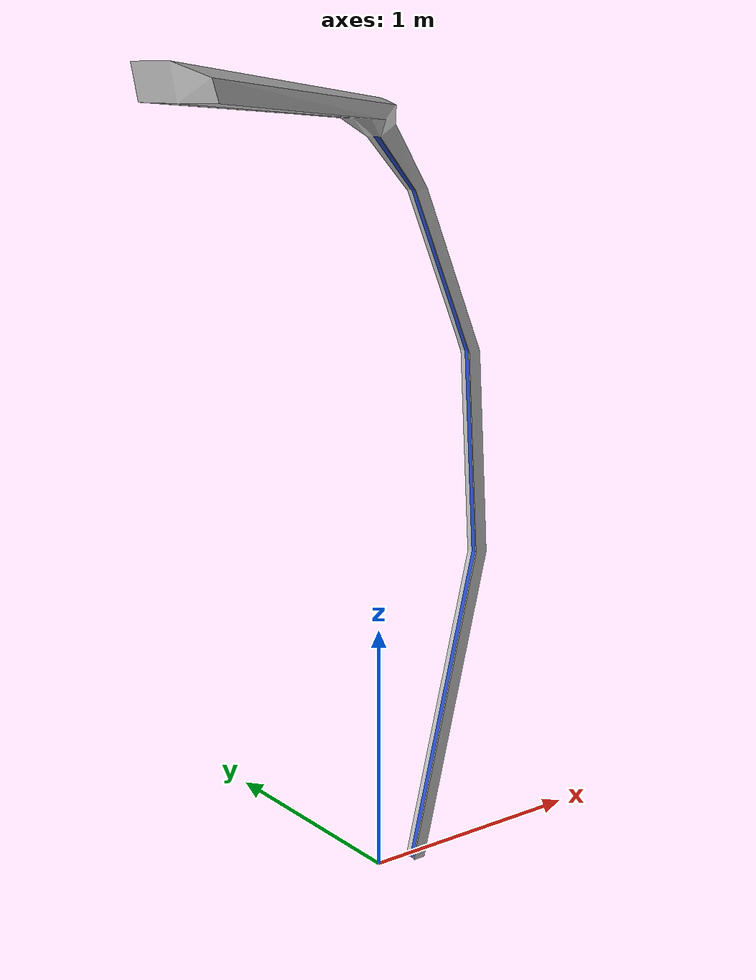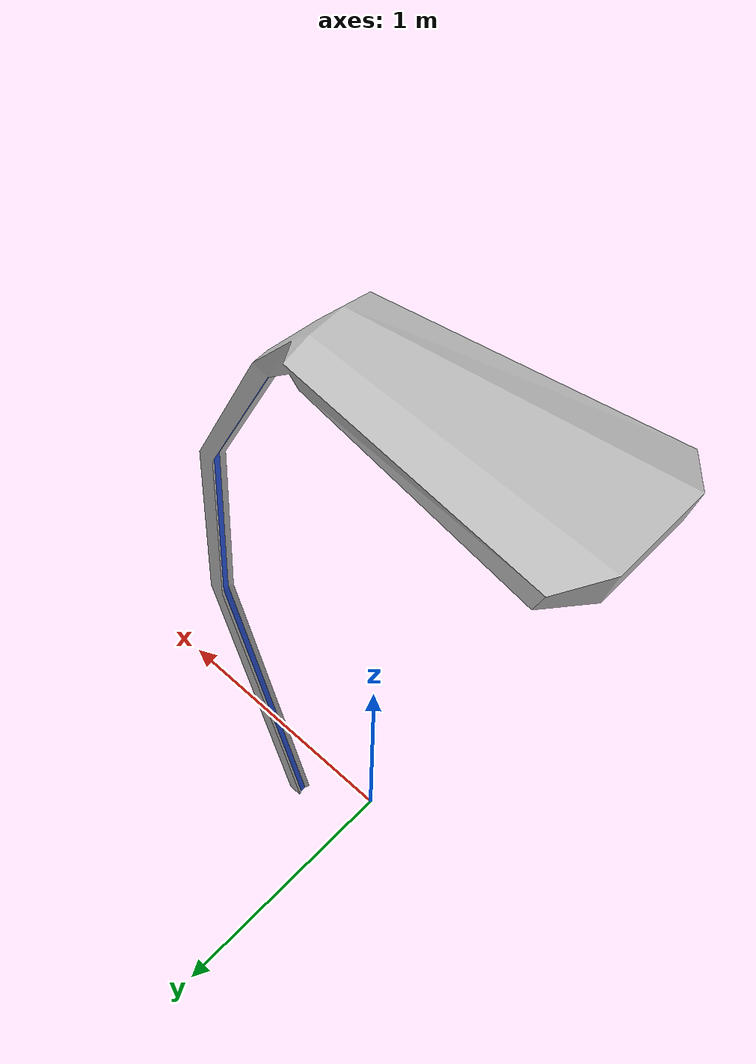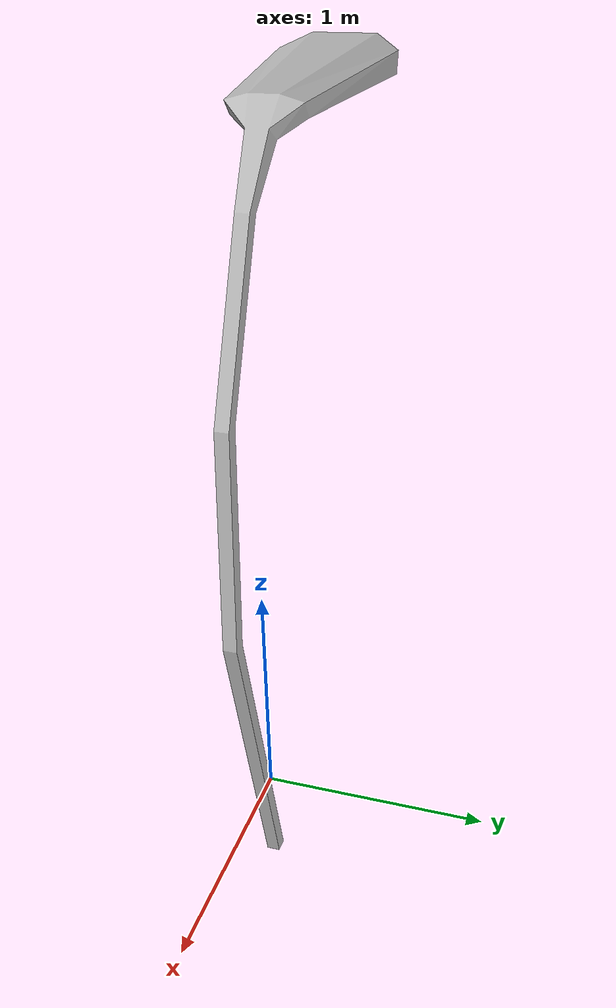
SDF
<?xml version="1.0" ?>
<sdf version="1.5">
  <model name='future_lamp'>
    <pose>0 0 0 0 0 0</pose>
    <static>1</static>
    <link name='body'>
      <collision name="lamp">
        <geometry>
          <mesh>
            <uri>model://future_lamp/meshes/future_lamp-coll.dae</uri>
          </mesh>
        </geometry>
      </collision>
      <visual name='lamp'>
        <cast_shadows>1</cast_shadows>
        <geometry>
          <mesh>
            <uri>model://future_lamp/meshes/future_lamp.dae</uri>
          </mesh>
        </geometry>
      </visual>
      <velocity_decay>
        <linear>0</linear>
        <angular>0</angular>
      </velocity_decay>
      <self_collide>0</self_collide>
      <kinematic>0</kinematic>
      <gravity>1</gravity>

      <visual name='screen_glass'>
        <cast_shadows>0</cast_shadows>
        <pose>
          0 0 0 0 0 0
        </pose>
        <geometry>
          <mesh>
            <uri>model://future_lamp/meshes/future_lamp_emission.dae</uri>
          </mesh>
        </geometry>
        <material>
          <script>
            <uri>file://media/materials/scripts/gazebo.material</uri>
            <name>Gazebo/BlueGlow</name>
          </script>
        </material>
      </visual>

    </link>
  </model>
</sdf>
